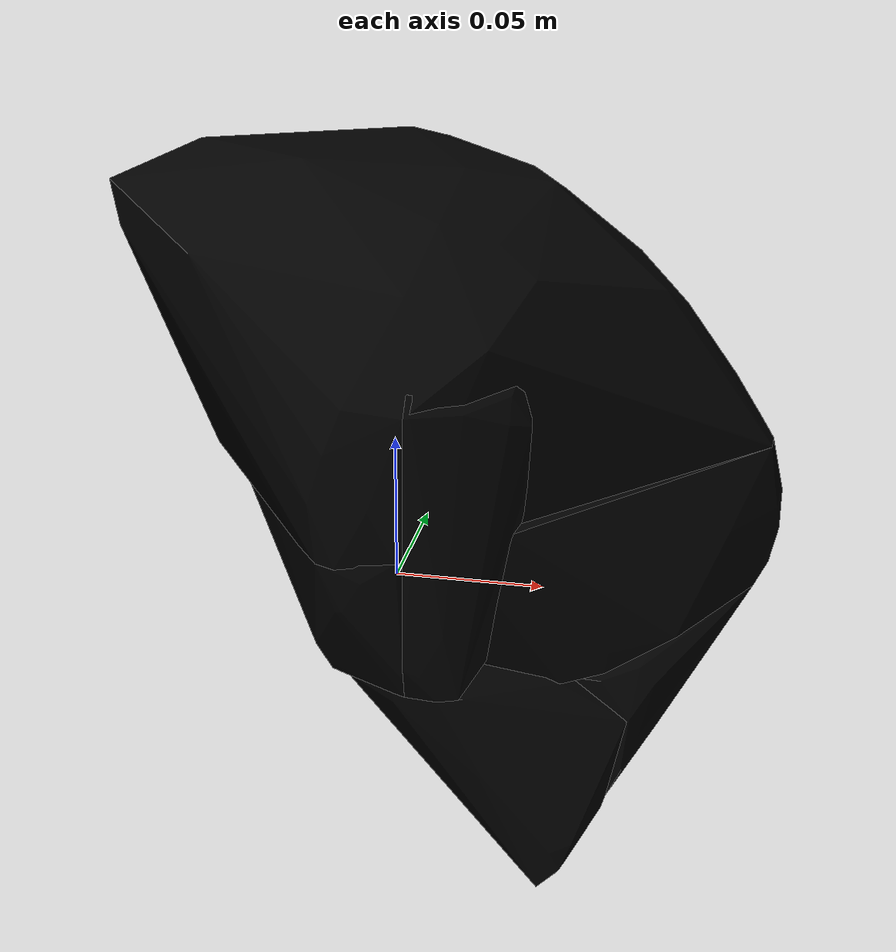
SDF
<?xml version='1.0' encoding='UTF-8'?>
<sdf version="1.7">
  <model name="milk_bsdf_mesh">
    <link name="vertical_link">
      <inertial>
        <pose>0 0 0 0 0 0</pose>
        <mass>2.18488</mass>
        <inertia>
          <ixx>0.0076046414</ixx>
          <iyy>0.008738728</iyy>
          <izz>0.006206846</izz>
          <ixy>-0.0009277931</ixy>
          <ixz>0.0021595946</ixz>
          <iyz>0.00022561172</iyz>
        </inertia>
      </inertial>
      <visual name="convex_0">
        <pose>0 0 0 0 0 0</pose>
        <geometry>
          <mesh>
            <uri>milk_bsdf_mesh_convex_0.obj</uri>
          </mesh>
        </geometry>
        <material>
          <diffuse>0 0 0 1</diffuse>
        </material>
      </visual>
      <collision name="convex_0_volume">
        <pose>0 0 0 0 0 0</pose>
        <geometry>
          <mesh>
            <uri>milk_bsdf_mesh_convex_0.obj</uri>
          </mesh>
        </geometry>
        <drake:proximity_properties xmlns:drake="uri:drake">
          <drake:compliant_hydroelastic/>
          <drake:hydroelastic_modulus> 3.0e7 </drake:hydroelastic_modulus>
          <drake:mesh_resolution_hint> 0.18 </drake:mesh_resolution_hint>
          <drake:hunt_crossley_dissipation>10</drake:hunt_crossley_dissipation>
          <drake:mu_dynamic>0.3</drake:mu_dynamic>
        </drake:proximity_properties>
      </collision>
      <visual name="convex_1">
        <pose>0 0 0 0 0 0</pose>
        <geometry>
          <mesh>
            <uri>milk_bsdf_mesh_convex_1.obj</uri>
          </mesh>
        </geometry>
        <material>
          <diffuse>0 0 0 1</diffuse>
        </material>
      </visual>
      <collision name="convex_1_volume">
        <pose>0 0 0 0 0 0</pose>
        <geometry>
          <mesh>
            <uri>milk_bsdf_mesh_convex_1.obj</uri>
          </mesh>
        </geometry>
        <drake:proximity_properties xmlns:drake="uri:drake">
          <drake:compliant_hydroelastic/>
          <drake:hydroelastic_modulus> 3.0e7 </drake:hydroelastic_modulus>
          <drake:mesh_resolution_hint> 0.18 </drake:mesh_resolution_hint>
          <drake:hunt_crossley_dissipation>10</drake:hunt_crossley_dissipation>
          <drake:mu_dynamic>0.3</drake:mu_dynamic>
        </drake:proximity_properties>
      </collision>
      <visual name="convex_2">
        <pose>0 0 0 0 0 0</pose>
        <geometry>
          <mesh>
            <uri>milk_bsdf_mesh_convex_2.obj</uri>
          </mesh>
        </geometry>
        <material>
          <diffuse>0 0 0 1</diffuse>
        </material>
      </visual>
      <collision name="convex_2_volume">
        <pose>0 0 0 0 0 0</pose>
        <geometry>
          <mesh>
            <uri>milk_bsdf_mesh_convex_2.obj</uri>
          </mesh>
        </geometry>
        <drake:proximity_properties xmlns:drake="uri:drake">
          <drake:compliant_hydroelastic/>
          <drake:hydroelastic_modulus> 3.0e7 </drake:hydroelastic_modulus>
          <drake:mesh_resolution_hint> 0.18 </drake:mesh_resolution_hint>
          <drake:hunt_crossley_dissipation>10</drake:hunt_crossley_dissipation>
          <drake:mu_dynamic>0.3</drake:mu_dynamic>
        </drake:proximity_properties>
      </collision>
      <visual name="convex_3">
        <pose>0 0 0 0 0 0</pose>
        <geometry>
          <mesh>
            <uri>milk_bsdf_mesh_convex_3.obj</uri>
          </mesh>
        </geometry>
        <material>
          <diffuse>0 0 0 1</diffuse>
        </material>
      </visual>
      <collision name="convex_3_volume">
        <pose>0 0 0 0 0 0</pose>
        <geometry>
          <mesh>
            <uri>milk_bsdf_mesh_convex_3.obj</uri>
          </mesh>
        </geometry>
        <drake:proximity_properties xmlns:drake="uri:drake">
          <drake:compliant_hydroelastic/>
          <drake:hydroelastic_modulus> 3.0e7 </drake:hydroelastic_modulus>
          <drake:mesh_resolution_hint> 0.18 </drake:mesh_resolution_hint>
          <drake:hunt_crossley_dissipation>10</drake:hunt_crossley_dissipation>
          <drake:mu_dynamic>0.3</drake:mu_dynamic>
        </drake:proximity_properties>
      </collision>
      <visual name="convex_4">
        <pose>0 0 0 0 0 0</pose>
        <geometry>
          <mesh>
            <uri>milk_bsdf_mesh_convex_4.obj</uri>
          </mesh>
        </geometry>
        <material>
          <diffuse>0 0 0 1</diffuse>
        </material>
      </visual>
      <collision name="convex_4_volume">
        <pose>0 0 0 0 0 0</pose>
        <geometry>
          <mesh>
            <uri>milk_bsdf_mesh_convex_4.obj</uri>
          </mesh>
        </geometry>
        <drake:proximity_properties xmlns:drake="uri:drake">
          <drake:compliant_hydroelastic/>
          <drake:hydroelastic_modulus> 3.0e7 </drake:hydroelastic_modulus>
          <drake:mesh_resolution_hint> 0.18 </drake:mesh_resolution_hint>
          <drake:hunt_crossley_dissipation>10</drake:hunt_crossley_dissipation>
          <drake:mu_dynamic>0.3</drake:mu_dynamic>
        </drake:proximity_properties>
      </collision>
      <visual name="convex_5">
        <pose>0 0 0 0 0 0</pose>
        <geometry>
          <mesh>
            <uri>milk_bsdf_mesh_convex_5.obj</uri>
          </mesh>
        </geometry>
        <material>
          <diffuse>0 0 0 1</diffuse>
        </material>
      </visual>
      <collision name="convex_5_volume">
        <pose>0 0 0 0 0 0</pose>
        <geometry>
          <mesh>
            <uri>milk_bsdf_mesh_convex_5.obj</uri>
          </mesh>
        </geometry>
        <drake:proximity_properties xmlns:drake="uri:drake">
          <drake:compliant_hydroelastic/>
          <drake:hydroelastic_modulus> 3.0e7 </drake:hydroelastic_modulus>
          <drake:mesh_resolution_hint> 0.18 </drake:mesh_resolution_hint>
          <drake:hunt_crossley_dissipation>10</drake:hunt_crossley_dissipation>
          <drake:mu_dynamic>0.3</drake:mu_dynamic>
        </drake:proximity_properties>
      </collision>
      <visual name="convex_6">
        <pose>0 0 0 0 0 0</pose>
        <geometry>
          <mesh>
            <uri>milk_bsdf_mesh_convex_6.obj</uri>
          </mesh>
        </geometry>
        <material>
          <diffuse>0 0 0 1</diffuse>
        </material>
      </visual>
      <collision name="convex_6_volume">
        <pose>0 0 0 0 0 0</pose>
        <geometry>
          <mesh>
            <uri>milk_bsdf_mesh_convex_6.obj</uri>
          </mesh>
        </geometry>
        <drake:proximity_properties xmlns:drake="uri:drake">
          <drake:compliant_hydroelastic/>
          <drake:hydroelastic_modulus> 3.0e7 </drake:hydroelastic_modulus>
          <drake:mesh_resolution_hint> 0.18 </drake:mesh_resolution_hint>
          <drake:hunt_crossley_dissipation>10</drake:hunt_crossley_dissipation>
          <drake:mu_dynamic>0.3</drake:mu_dynamic>
        </drake:proximity_properties>
      </collision>
      <visual name="convex_7">
        <pose>0 0 0 0 0 0</pose>
        <geometry>
          <mesh>
            <uri>milk_bsdf_mesh_convex_7.obj</uri>
          </mesh>
        </geometry>
        <material>
          <diffuse>0 0 0 1</diffuse>
        </material>
      </visual>
      <collision name="convex_7_volume">
        <pose>0 0 0 0 0 0</pose>
        <geometry>
          <mesh>
            <uri>milk_bsdf_mesh_convex_7.obj</uri>
          </mesh>
        </geometry>
        <drake:proximity_properties xmlns:drake="uri:drake">
          <drake:compliant_hydroelastic/>
          <drake:hydroelastic_modulus> 3.0e7 </drake:hydroelastic_modulus>
          <drake:mesh_resolution_hint> 0.18 </drake:mesh_resolution_hint>
          <drake:hunt_crossley_dissipation>10</drake:hunt_crossley_dissipation>
          <drake:mu_dynamic>0.3</drake:mu_dynamic>
        </drake:proximity_properties>
      </collision>
      <visual name="convex_8">
        <pose>0 0 0 0 0 0</pose>
        <geometry>
          <mesh>
            <uri>milk_bsdf_mesh_convex_8.obj</uri>
          </mesh>
        </geometry>
        <material>
          <diffuse>0 0 0 1</diffuse>
        </material>
      </visual>
      <collision name="convex_8_volume">
        <pose>0 0 0 0 0 0</pose>
        <geometry>
          <mesh>
            <uri>milk_bsdf_mesh_convex_8.obj</uri>
          </mesh>
        </geometry>
        <drake:proximity_properties xmlns:drake="uri:drake">
          <drake:compliant_hydroelastic/>
          <drake:hydroelastic_modulus> 3.0e7 </drake:hydroelastic_modulus>
          <drake:mesh_resolution_hint> 0.18 </drake:mesh_resolution_hint>
          <drake:hunt_crossley_dissipation>10</drake:hunt_crossley_dissipation>
          <drake:mu_dynamic>0.3</drake:mu_dynamic>
        </drake:proximity_properties>
      </collision>
      <visual name="convex_9">
        <pose>0 0 0 0 0 0</pose>
        <geometry>
          <mesh>
            <uri>milk_bsdf_mesh_convex_9.obj</uri>
          </mesh>
        </geometry>
        <material>
          <diffuse>0 0 0 1</diffuse>
        </material>
      </visual>
      <collision name="convex_9_volume">
        <pose>0 0 0 0 0 0</pose>
        <geometry>
          <mesh>
            <uri>milk_bsdf_mesh_convex_9.obj</uri>
          </mesh>
        </geometry>
        <drake:proximity_properties xmlns:drake="uri:drake">
          <drake:compliant_hydroelastic/>
          <drake:hydroelastic_modulus> 3.0e7 </drake:hydroelastic_modulus>
          <drake:mesh_resolution_hint> 0.18 </drake:mesh_resolution_hint>
          <drake:hunt_crossley_dissipation>10</drake:hunt_crossley_dissipation>
          <drake:mu_dynamic>0.3</drake:mu_dynamic>
        </drake:proximity_properties>
      </collision>
    </link>
  </model>
</sdf>
